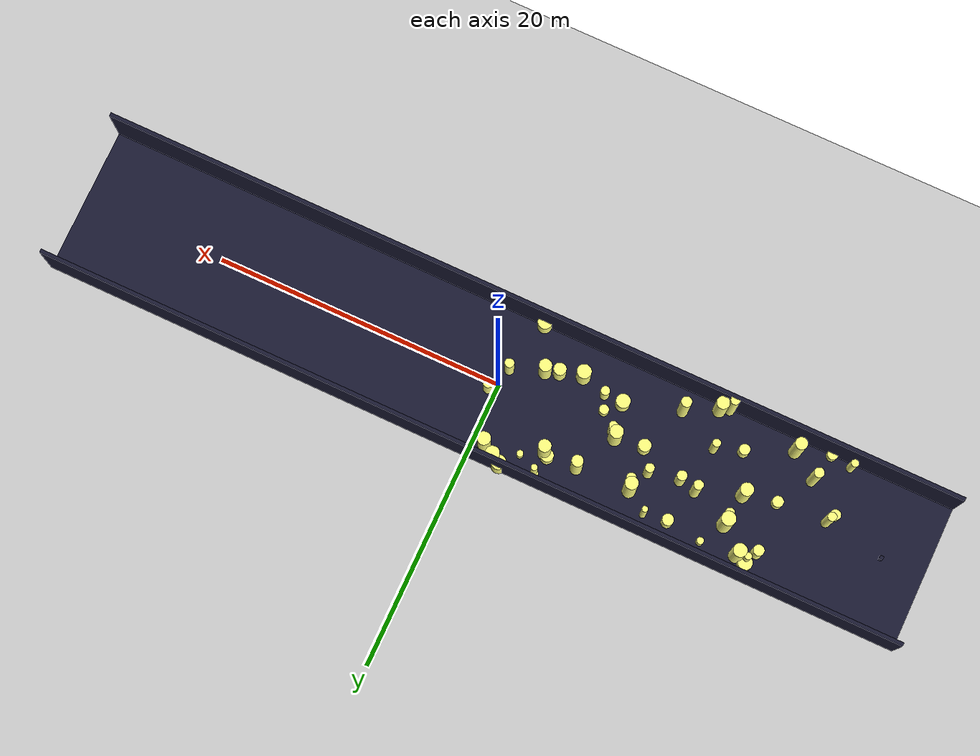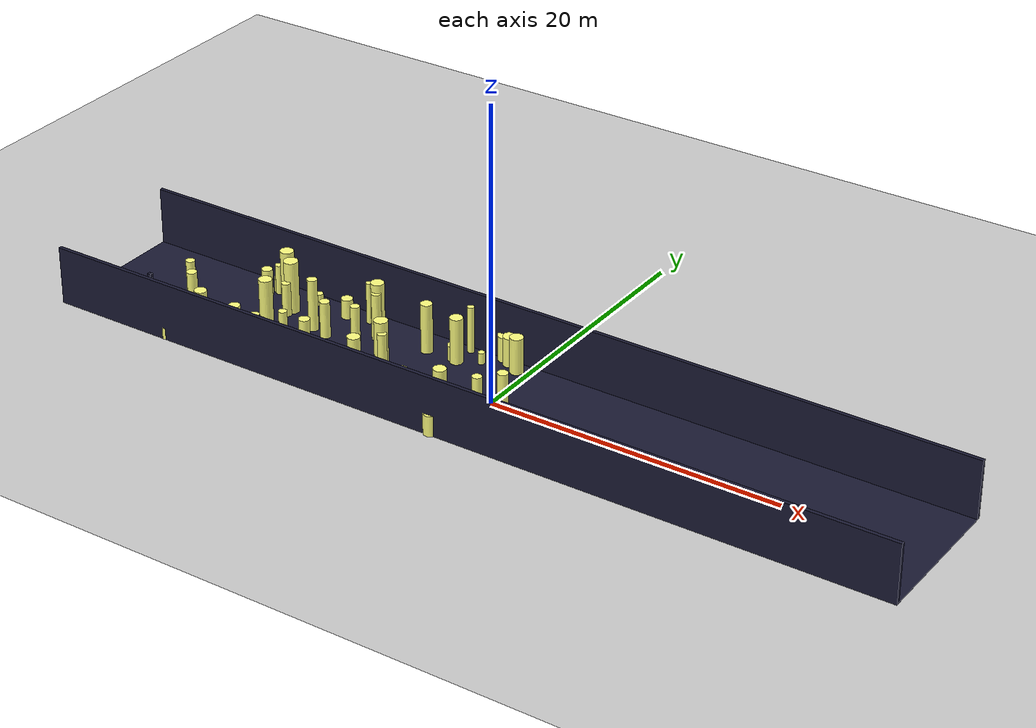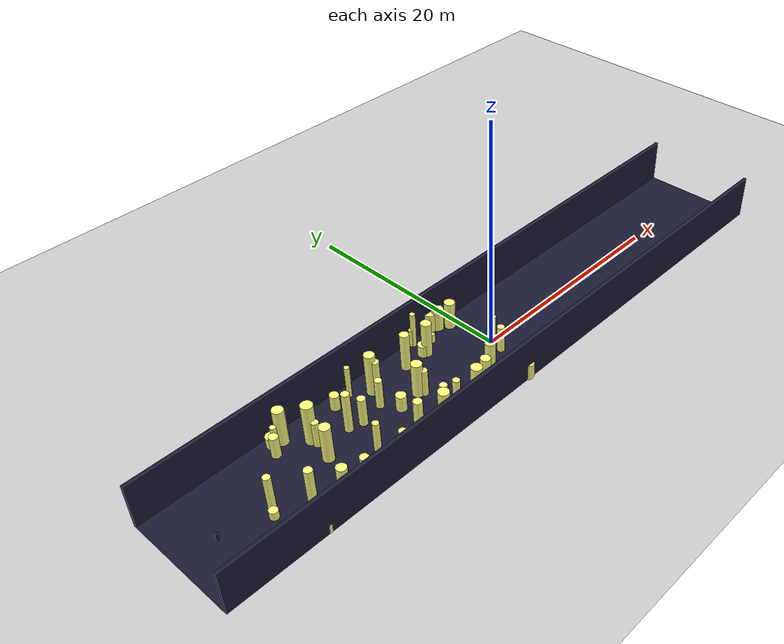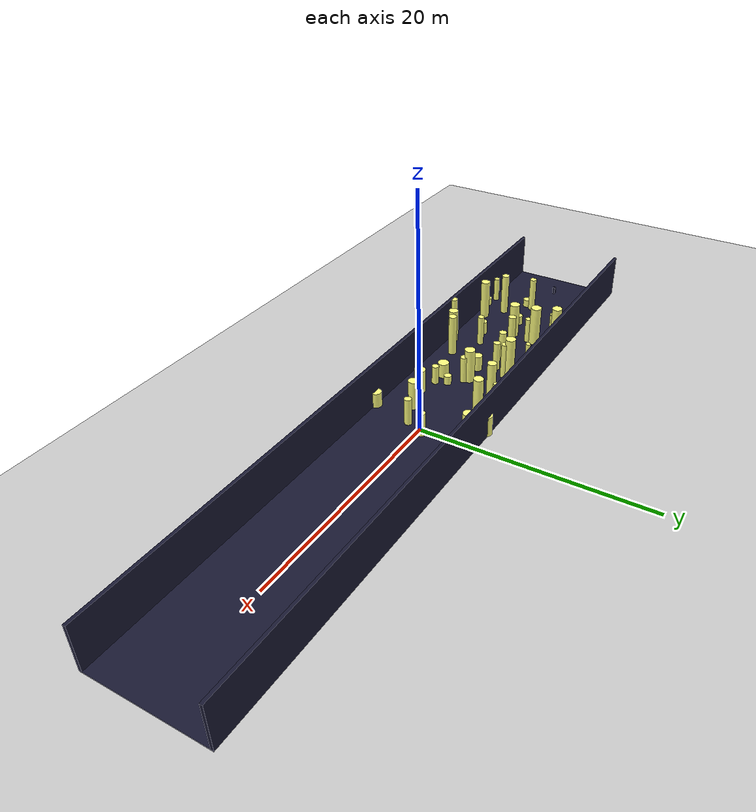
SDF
<sdf version="1.4">
 <world name="default">
  <include><uri>model://ground_plane</uri></include>
  <include><uri>model://sun</uri></include>
  <model name="forest">
   <static>true</static>
   <link name="cylinder0">
    <pose>-3.192849726844482 3.5873826504181725 0.41820738886080283 0 0 0</pose>
    <visual name="visual">
     <geometry>
      <cylinder><radius>0.22529840313196697</radius><length>0.8364147777216057</length></cylinder>
     </geometry>
     <material>
      <ambient>0.6 0.6 0.6 1</ambient>
      <diffuse>1 1 0.5 1</diffuse>
      <specular>0 0 0</specular>
      <emissive>0 0 0 1</emissive>
     </material>
    </visual>
    <collision name="collision">
     <geometry>
      <cylinder><radius>0.22529840313196697</radius><length>0.8364147777216057</length></cylinder>
     </geometry>
     <max_contacts>0</max_contacts>
    </collision>
   </link>
   <link name="cylinder1">
    <pose>-6.531154573892994 -2.2991554551917304 0.8637511969062655 0 0 0</pose>
    <visual name="visual">
     <geometry>
      <cylinder><radius>0.3069299705862069</radius><length>1.727502393812531</length></cylinder>
     </geometry>
     <material>
      <ambient>0.6 0.6 0.6 1</ambient>
      <diffuse>1 1 0.5 1</diffuse>
      <specular>0 0 0</specular>
      <emissive>0 0 0 1</emissive>
     </material>
    </visual>
    <collision name="collision">
     <geometry>
      <cylinder><radius>0.3069299705862069</radius><length>1.727502393812531</length></cylinder>
     </geometry>
     <max_contacts>0</max_contacts>
    </collision>
   </link>
   <link name="cylinder3">
    <pose>-7.840075381841473 -2.2307376366061327 0.6986270750220682 0 0 0</pose>
    <visual name="visual">
     <geometry>
      <cylinder><radius>0.48328531518326306</radius><length>1.3972541500441364</length></cylinder>
     </geometry>
     <material>
      <ambient>0.6 0.6 0.6 1</ambient>
      <diffuse>1 1 0.5 1</diffuse>
      <specular>0 0 0</specular>
      <emissive>0 0 0 1</emissive>
     </material>
    </visual>
    <collision name="collision">
     <geometry>
      <cylinder><radius>0.48328531518326306</radius><length>1.3972541500441364</length></cylinder>
     </geometry>
     <max_contacts>0</max_contacts>
    </collision>
   </link>
   <link name="cylinder7">
    <pose>-10.284992835760514 -0.16313799900772352 0.731888011486953 0 0 0</pose>
    <visual name="visual">
     <geometry>
      <cylinder><radius>0.4293897891182539</radius><length>1.463776022973906</length></cylinder>
     </geometry>
     <material>
      <ambient>0.6 0.6 0.6 1</ambient>
      <diffuse>1 1 0.5 1</diffuse>
      <specular>0 0 0</specular>
      <emissive>0 0 0 1</emissive>
     </material>
    </visual>
    <collision name="collision">
     <geometry>
      <cylinder><radius>0.4293897891182539</radius><length>1.463776022973906</length></cylinder>
     </geometry>
     <max_contacts>0</max_contacts>
    </collision>
   </link>
   <link name="cylinder10">
    <pose>-0.22686120978561064 -1.2207896263014395 1.2268731282159098 0 0 0</pose>
    <visual name="visual">
     <geometry>
      <cylinder><radius>0.3159867367491881</radius><length>2.4537462564318195</length></cylinder>
     </geometry>
     <material>
      <ambient>0.6 0.6 0.6 1</ambient>
      <diffuse>1 1 0.5 1</diffuse>
      <specular>0 0 0</specular>
      <emissive>0 0 0 1</emissive>
     </material>
    </visual>
    <collision name="collision">
     <geometry>
      <cylinder><radius>0.3159867367491881</radius><length>2.4537462564318195</length></cylinder>
     </geometry>
     <max_contacts>0</max_contacts>
    </collision>
   </link>
   <link name="cylinder13">
    <pose>-1.6479260388239219 4.486018486528385 1.0291647151481158 0 0 0</pose>
    <visual name="visual">
     <geometry>
      <cylinder><radius>0.48310275463035407</radius><length>2.0583294302962316</length></cylinder>
     </geometry>
     <material>
      <ambient>0.6 0.6 0.6 1</ambient>
      <diffuse>1 1 0.5 1</diffuse>
      <specular>0 0 0</specular>
      <emissive>0 0 0 1</emissive>
     </material>
    </visual>
    <collision name="collision">
     <geometry>
      <cylinder><radius>0.48310275463035407</radius><length>2.0583294302962316</length></cylinder>
     </geometry>
     <max_contacts>0</max_contacts>
    </collision>
   </link>
   <link name="cylinder14">
    <pose>-13.717309106918485 -4.482344821012548 1.5525525306366679 0 0 0</pose>
    <visual name="visual">
     <geometry>
      <cylinder><radius>0.4386502182769846</radius><length>3.1051050612733357</length></cylinder>
     </geometry>
     <material>
      <ambient>0.6 0.6 0.6 1</ambient>
      <diffuse>1 1 0.5 1</diffuse>
      <specular>0 0 0</specular>
      <emissive>0 0 0 1</emissive>
     </material>
    </visual>
    <collision name="collision">
     <geometry>
      <cylinder><radius>0.4386502182769846</radius><length>3.1051050612733357</length></cylinder>
     </geometry>
     <max_contacts>0</max_contacts>
    </collision>
   </link>
   <link name="cylinder16">
    <pose>-3.2949368990611134 -2.345796280695861 0.913958535475745 0 0 0</pose>
    <visual name="visual">
     <geometry>
      <cylinder><radius>0.42502396809160364</radius><length>1.82791707095149</length></cylinder>
     </geometry>
     <material>
      <ambient>0.6 0.6 0.6 1</ambient>
      <diffuse>1 1 0.5 1</diffuse>
      <specular>0 0 0</specular>
      <emissive>0 0 0 1</emissive>
     </material>
    </visual>
    <collision name="collision">
     <geometry>
      <cylinder><radius>0.42502396809160364</radius><length>1.82791707095149</length></cylinder>
     </geometry>
     <max_contacts>0</max_contacts>
    </collision>
   </link>
   <link name="cylinder19">
    <pose>-21.52139541314041 -4.799360331339456 0.3919770281490217 0 0 0</pose>
    <visual name="visual">
     <geometry>
      <cylinder><radius>0.3513322325659828</radius><length>0.7839540562980434</length></cylinder>
     </geometry>
     <material>
      <ambient>0.6 0.6 0.6 1</ambient>
      <diffuse>1 1 0.5 1</diffuse>
      <specular>0 0 0</specular>
      <emissive>0 0 0 1</emissive>
     </material>
    </visual>
    <collision name="collision">
     <geometry>
      <cylinder><radius>0.3513322325659828</radius><length>0.7839540562980434</length></cylinder>
     </geometry>
     <max_contacts>0</max_contacts>
    </collision>
   </link>
   <link name="cylinder20">
    <pose>-16.022930730948598 3.8910977119118844 0.4477537448495911 0 0 0</pose>
    <visual name="visual">
     <geometry>
      <cylinder><radius>0.24179222421214583</radius><length>0.8955074896991821</length></cylinder>
     </geometry>
     <material>
      <ambient>0.6 0.6 0.6 1</ambient>
      <diffuse>1 1 0.5 1</diffuse>
      <specular>0 0 0</specular>
      <emissive>0 0 0 1</emissive>
     </material>
    </visual>
    <collision name="collision">
     <geometry>
      <cylinder><radius>0.24179222421214583</radius><length>0.8955074896991821</length></cylinder>
     </geometry>
     <max_contacts>0</max_contacts>
    </collision>
   </link>
   <link name="cylinder21">
    <pose>-18.475527163501443 3.7433859103773717 1.661870806551407 0 0 0</pose>
    <visual name="visual">
     <geometry>
      <cylinder><radius>0.45883959178836686</radius><length>3.323741613102814</length></cylinder>
     </geometry>
     <material>
      <ambient>0.6 0.6 0.6 1</ambient>
      <diffuse>1 1 0.5 1</diffuse>
      <specular>0 0 0</specular>
      <emissive>0 0 0 1</emissive>
     </material>
    </visual>
    <collision name="collision">
     <geometry>
      <cylinder><radius>0.45883959178836686</radius><length>3.323741613102814</length></cylinder>
     </geometry>
     <max_contacts>0</max_contacts>
    </collision>
   </link>
   <link name="cylinder22">
    <pose>-4.535254107145597 4.384111423506766 1.6392177718342351 0 0 0</pose>
    <visual name="visual">
     <geometry>
      <cylinder><radius>0.21562769942210844</radius><length>3.2784355436684702</length></cylinder>
     </geometry>
     <material>
      <ambient>0.6 0.6 0.6 1</ambient>
      <diffuse>1 1 0.5 1</diffuse>
      <specular>0 0 0</specular>
      <emissive>0 0 0 1</emissive>
     </material>
    </visual>
    <collision name="collision">
     <geometry>
      <cylinder><radius>0.21562769942210844</radius><length>3.2784355436684702</length></cylinder>
     </geometry>
     <max_contacts>0</max_contacts>
    </collision>
   </link>
   <link name="cylinder24">
    <pose>-17.321003405382605 0.02377790525131296 1.6424565787959828 0 0 0</pose>
    <visual name="visual">
     <geometry>
      <cylinder><radius>0.4467246966665991</radius><length>3.2849131575919657</length></cylinder>
     </geometry>
     <material>
      <ambient>0.6 0.6 0.6 1</ambient>
      <diffuse>1 1 0.5 1</diffuse>
      <specular>0 0 0</specular>
      <emissive>0 0 0 1</emissive>
     </material>
    </visual>
    <collision name="collision">
     <geometry>
      <cylinder><radius>0.4467246966665991</radius><length>3.2849131575919657</length></cylinder>
     </geometry>
     <max_contacts>0</max_contacts>
    </collision>
   </link>
   <link name="cylinder26">
    <pose>-14.343603194212061 -4.7722961267242265 1.9627895293435929 0 0 0</pose>
    <visual name="visual">
     <geometry>
      <cylinder><radius>0.31342925739843686</radius><length>3.9255790586871857</length></cylinder>
     </geometry>
     <material>
      <ambient>0.6 0.6 0.6 1</ambient>
      <diffuse>1 1 0.5 1</diffuse>
      <specular>0 0 0</specular>
      <emissive>0 0 0 1</emissive>
     </material>
    </visual>
    <collision name="collision">
     <geometry>
      <cylinder><radius>0.31342925739843686</radius><length>3.9255790586871857</length></cylinder>
     </geometry>
     <max_contacts>0</max_contacts>
    </collision>
   </link>
   <link name="cylinder27">
    <pose>-11.185640867635904 1.2445072055534805 1.3479667729197307 0 0 0</pose>
    <visual name="visual">
     <geometry>
      <cylinder><radius>0.3088744043318439</radius><length>2.6959335458394613</length></cylinder>
     </geometry>
     <material>
      <ambient>0.6 0.6 0.6 1</ambient>
      <diffuse>1 1 0.5 1</diffuse>
      <specular>0 0 0</specular>
      <emissive>0 0 0 1</emissive>
     </material>
    </visual>
    <collision name="collision">
     <geometry>
      <cylinder><radius>0.3088744043318439</radius><length>2.6959335458394613</length></cylinder>
     </geometry>
     <max_contacts>0</max_contacts>
    </collision>
   </link>
   <link name="cylinder28">
    <pose>-10.375347741907309 2.397718843863278 1.6562582636478846 0 0 0</pose>
    <visual name="visual">
     <geometry>
      <cylinder><radius>0.31791861940273086</radius><length>3.3125165272957693</length></cylinder>
     </geometry>
     <material>
      <ambient>0.6 0.6 0.6 1</ambient>
      <diffuse>1 1 0.5 1</diffuse>
      <specular>0 0 0</specular>
      <emissive>0 0 0 1</emissive>
     </material>
    </visual>
    <collision name="collision">
     <geometry>
      <cylinder><radius>0.31791861940273086</radius><length>3.3125165272957693</length></cylinder>
     </geometry>
     <max_contacts>0</max_contacts>
    </collision>
   </link>
   <link name="cylinder29">
    <pose>-11.978202229633927 3.8230897167422953 1.4724057514765017 0 0 0</pose>
    <visual name="visual">
     <geometry>
      <cylinder><radius>0.20522275142655363</radius><length>2.9448115029530033</length></cylinder>
     </geometry>
     <material>
      <ambient>0.6 0.6 0.6 1</ambient>
      <diffuse>1 1 0.5 1</diffuse>
      <specular>0 0 0</specular>
      <emissive>0 0 0 1</emissive>
     </material>
    </visual>
    <collision name="collision">
     <geometry>
      <cylinder><radius>0.20522275142655363</radius><length>2.9448115029530033</length></cylinder>
     </geometry>
     <max_contacts>0</max_contacts>
    </collision>
   </link>
   <link name="cylinder32">
    <pose>-22.933062753586945 -4.561366808859965 1.1676305453009026 0 0 0</pose>
    <visual name="visual">
     <geometry>
      <cylinder><radius>0.2557523275480341</radius><length>2.335261090601805</length></cylinder>
     </geometry>
     <material>
      <ambient>0.6 0.6 0.6 1</ambient>
      <diffuse>1 1 0.5 1</diffuse>
      <specular>0 0 0</specular>
      <emissive>0 0 0 1</emissive>
     </material>
    </visual>
    <collision name="collision">
     <geometry>
      <cylinder><radius>0.2557523275480341</radius><length>2.335261090601805</length></cylinder>
     </geometry>
     <max_contacts>0</max_contacts>
    </collision>
   </link>
   <link name="cylinder36">
    <pose>-6.927439370681405 -1.300475320676795 0.43946229399103265 0 0 0</pose>
    <visual name="visual">
     <geometry>
      <cylinder><radius>0.3275929531164651</radius><length>0.8789245879820653</length></cylinder>
     </geometry>
     <material>
      <ambient>0.6 0.6 0.6 1</ambient>
      <diffuse>1 1 0.5 1</diffuse>
      <specular>0 0 0</specular>
      <emissive>0 0 0 1</emissive>
     </material>
    </visual>
    <collision name="collision">
     <geometry>
      <cylinder><radius>0.3275929531164651</radius><length>0.8789245879820653</length></cylinder>
     </geometry>
     <max_contacts>0</max_contacts>
    </collision>
   </link>
   <link name="cylinder40">
    <pose>-19.617193351092453 3.0552382854576514 0.9829191595916573 0 0 0</pose>
    <visual name="visual">
     <geometry>
      <cylinder><radius>0.36671551089279053</radius><length>1.9658383191833146</length></cylinder>
     </geometry>
     <material>
      <ambient>0.6 0.6 0.6 1</ambient>
      <diffuse>1 1 0.5 1</diffuse>
      <specular>0 0 0</specular>
      <emissive>0 0 0 1</emissive>
     </material>
    </visual>
    <collision name="collision">
     <geometry>
      <cylinder><radius>0.36671551089279053</radius><length>1.9658383191833146</length></cylinder>
     </geometry>
     <max_contacts>0</max_contacts>
    </collision>
   </link>
   <link name="cylinder43">
    <pose>-0.7968589158950721 3.915933726437169 1.2687810697210444 0 0 0</pose>
    <visual name="visual">
     <geometry>
      <cylinder><radius>0.4544519215467621</radius><length>2.537562139442089</length></cylinder>
     </geometry>
     <material>
      <ambient>0.6 0.6 0.6 1</ambient>
      <diffuse>1 1 0.5 1</diffuse>
      <specular>0 0 0</specular>
      <emissive>0 0 0 1</emissive>
     </material>
    </visual>
    <collision name="collision">
     <geometry>
      <cylinder><radius>0.4544519215467621</radius><length>2.537562139442089</length></cylinder>
     </geometry>
     <max_contacts>0</max_contacts>
    </collision>
   </link>
   <link name="cylinder44">
    <pose>-16.966308467028362 1.6498239983056706 1.1904611856741492 0 0 0</pose>
    <visual name="visual">
     <geometry>
      <cylinder><radius>0.29661769156286455</radius><length>2.3809223713482983</length></cylinder>
     </geometry>
     <material>
      <ambient>0.6 0.6 0.6 1</ambient>
      <diffuse>1 1 0.5 1</diffuse>
      <specular>0 0 0</specular>
      <emissive>0 0 0 1</emissive>
     </material>
    </visual>
    <collision name="collision">
     <geometry>
      <cylinder><radius>0.29661769156286455</radius><length>2.3809223713482983</length></cylinder>
     </geometry>
     <max_contacts>0</max_contacts>
    </collision>
   </link>
   <link name="cylinder45">
    <pose>-23.242238410512115 -1.298396019229414 0.3860815771462779 0 0 0</pose>
    <visual name="visual">
     <geometry>
      <cylinder><radius>0.3566798289988673</radius><length>0.7721631542925558</length></cylinder>
     </geometry>
     <material>
      <ambient>0.6 0.6 0.6 1</ambient>
      <diffuse>1 1 0.5 1</diffuse>
      <specular>0 0 0</specular>
      <emissive>0 0 0 1</emissive>
     </material>
    </visual>
    <collision name="collision">
     <geometry>
      <cylinder><radius>0.3566798289988673</radius><length>0.7721631542925558</length></cylinder>
     </geometry>
     <max_contacts>0</max_contacts>
    </collision>
   </link>
   <link name="cylinder47">
    <pose>-8.315415345329512 0.07293625856197927 1.5698973765842383 0 0 0</pose>
    <visual name="visual">
     <geometry>
      <cylinder><radius>0.4568266699394549</radius><length>3.1397947531684767</length></cylinder>
     </geometry>
     <material>
      <ambient>0.6 0.6 0.6 1</ambient>
      <diffuse>1 1 0.5 1</diffuse>
      <specular>0 0 0</specular>
      <emissive>0 0 0 1</emissive>
     </material>
    </visual>
    <collision name="collision">
     <geometry>
      <cylinder><radius>0.4568266699394549</radius><length>3.1397947531684767</length></cylinder>
     </geometry>
     <max_contacts>0</max_contacts>
    </collision>
   </link>
   <link name="cylinder48">
    <pose>-19.14534681637143 3.6872108470854528 1.05835725443846 0 0 0</pose>
    <visual name="visual">
     <geometry>
      <cylinder><radius>0.23886587185151642</radius><length>2.11671450887692</length></cylinder>
     </geometry>
     <material>
      <ambient>0.6 0.6 0.6 1</ambient>
      <diffuse>1 1 0.5 1</diffuse>
      <specular>0 0 0</specular>
      <emissive>0 0 0 1</emissive>
     </material>
    </visual>
    <collision name="collision">
     <geometry>
      <cylinder><radius>0.23886587185151642</radius><length>2.11671450887692</length></cylinder>
     </geometry>
     <max_contacts>0</max_contacts>
    </collision>
   </link>
   <link name="cylinder51">
    <pose>-13.24604810025954 0.818495764659243 1.293570343791727 0 0 0</pose>
    <visual name="visual">
     <geometry>
      <cylinder><radius>0.34008352765678296</radius><length>2.587140687583454</length></cylinder>
     </geometry>
     <material>
      <ambient>0.6 0.6 0.6 1</ambient>
      <diffuse>1 1 0.5 1</diffuse>
      <specular>0 0 0</specular>
      <emissive>0 0 0 1</emissive>
     </material>
    </visual>
    <collision name="collision">
     <geometry>
      <cylinder><radius>0.34008352765678296</radius><length>2.587140687583454</length></cylinder>
     </geometry>
     <max_contacts>0</max_contacts>
    </collision>
   </link>
   <link name="cylinder54">
    <pose>-4.645652061191736 4.4955602661596075 0.8244760821237908 0 0 0</pose>
    <visual name="visual">
     <geometry>
      <cylinder><radius>0.21961359601710717</radius><length>1.6489521642475815</length></cylinder>
     </geometry>
     <material>
      <ambient>0.6 0.6 0.6 1</ambient>
      <diffuse>1 1 0.5 1</diffuse>
      <specular>0 0 0</specular>
      <emissive>0 0 0 1</emissive>
     </material>
    </visual>
    <collision name="collision">
     <geometry>
      <cylinder><radius>0.21961359601710717</radius><length>1.6489521642475815</length></cylinder>
     </geometry>
     <max_contacts>0</max_contacts>
    </collision>
   </link>
   <link name="cylinder56">
    <pose>-2.4037501720572934 -2.020563672012404 1.3325415203637436 0 0 0</pose>
    <visual name="visual">
     <geometry>
      <cylinder><radius>0.4285643957914931</radius><length>2.6650830407274873</length></cylinder>
     </geometry>
     <material>
      <ambient>0.6 0.6 0.6 1</ambient>
      <diffuse>1 1 0.5 1</diffuse>
      <specular>0 0 0</specular>
      <emissive>0 0 0 1</emissive>
     </material>
    </visual>
    <collision name="collision">
     <geometry>
      <cylinder><radius>0.4285643957914931</radius><length>2.6650830407274873</length></cylinder>
     </geometry>
     <max_contacts>0</max_contacts>
    </collision>
   </link>
   <link name="cylinder58">
    <pose>-16.223436627568937 -2.6358226408781738 0.639615828912053 0 0 0</pose>
    <visual name="visual">
     <geometry>
      <cylinder><radius>0.3692438282645588</radius><length>1.279231657824106</length></cylinder>
     </geometry>
     <material>
      <ambient>0.6 0.6 0.6 1</ambient>
      <diffuse>1 1 0.5 1</diffuse>
      <specular>0 0 0</specular>
      <emissive>0 0 0 1</emissive>
     </material>
    </visual>
    <collision name="collision">
     <geometry>
      <cylinder><radius>0.3692438282645588</radius><length>1.279231657824106</length></cylinder>
     </geometry>
     <max_contacts>0</max_contacts>
    </collision>
   </link>
   <link name="cylinder59">
    <pose>-4.833804361718109 3.011883279083353 0.558730807152031 0 0 0</pose>
    <visual name="visual">
     <geometry>
      <cylinder><radius>0.44148800575297126</radius><length>1.117461614304062</length></cylinder>
     </geometry>
     <material>
      <ambient>0.6 0.6 0.6 1</ambient>
      <diffuse>1 1 0.5 1</diffuse>
      <specular>0 0 0</specular>
      <emissive>0 0 0 1</emissive>
     </material>
    </visual>
    <collision name="collision">
     <geometry>
      <cylinder><radius>0.44148800575297126</radius><length>1.117461614304062</length></cylinder>
     </geometry>
     <max_contacts>0</max_contacts>
    </collision>
   </link>
   <link name="cylinder61">
    <pose>-10.542345697944755 2.796629027205281 1.932119978304161 0 0 0</pose>
    <visual name="visual">
     <geometry>
      <cylinder><radius>0.4419601165467153</radius><length>3.864239956608322</length></cylinder>
     </geometry>
     <material>
      <ambient>0.6 0.6 0.6 1</ambient>
      <diffuse>1 1 0.5 1</diffuse>
      <specular>0 0 0</specular>
      <emissive>0 0 0 1</emissive>
     </material>
    </visual>
    <collision name="collision">
     <geometry>
      <cylinder><radius>0.4419601165467153</radius><length>3.864239956608322</length></cylinder>
     </geometry>
     <max_contacts>0</max_contacts>
    </collision>
   </link>
   <link name="cylinder65">
    <pose>-17.003328164011222 2.271189466586483 1.844629039812176 0 0 0</pose>
    <visual name="visual">
     <geometry>
      <cylinder><radius>0.4836389146505552</radius><length>3.689258079624352</length></cylinder>
     </geometry>
     <material>
      <ambient>0.6 0.6 0.6 1</ambient>
      <diffuse>1 1 0.5 1</diffuse>
      <specular>0 0 0</specular>
      <emissive>0 0 0 1</emissive>
     </material>
    </visual>
    <collision name="collision">
     <geometry>
      <cylinder><radius>0.4836389146505552</radius><length>3.689258079624352</length></cylinder>
     </geometry>
     <max_contacts>0</max_contacts>
    </collision>
   </link>
   <link name="cylinder66">
    <pose>-14.418765345843687 1.1102216565047325 1.838638379085933 0 0 0</pose>
    <visual name="visual">
     <geometry>
      <cylinder><radius>0.32853140967150973</radius><length>3.677276758171866</length></cylinder>
     </geometry>
     <material>
      <ambient>0.6 0.6 0.6 1</ambient>
      <diffuse>1 1 0.5 1</diffuse>
      <specular>0 0 0</specular>
      <emissive>0 0 0 1</emissive>
     </material>
    </visual>
    <collision name="collision">
     <geometry>
      <cylinder><radius>0.32853140967150973</radius><length>3.677276758171866</length></cylinder>
     </geometry>
     <max_contacts>0</max_contacts>
    </collision>
   </link>
   <link name="cylinder68">
    <pose>0.5154638344089584 0.44510947290544145 1.061932650878334 0 0 0</pose>
    <visual name="visual">
     <geometry>
      <cylinder><radius>0.3559748003883073</radius><length>2.123865301756668</length></cylinder>
     </geometry>
     <material>
      <ambient>0.6 0.6 0.6 1</ambient>
      <diffuse>1 1 0.5 1</diffuse>
      <specular>0 0 0</specular>
      <emissive>0 0 0 1</emissive>
     </material>
    </visual>
    <collision name="collision">
     <geometry>
      <cylinder><radius>0.3559748003883073</radius><length>2.123865301756668</length></cylinder>
     </geometry>
     <max_contacts>0</max_contacts>
    </collision>
   </link>
   <link name="cylinder69">
    <pose>-2.2240508841962594 4.81060729003705 0.8901127470546064 0 0 0</pose>
    <visual name="visual">
     <geometry>
      <cylinder><radius>0.4976981120629211</radius><length>1.7802254941092128</length></cylinder>
     </geometry>
     <material>
      <ambient>0.6 0.6 0.6 1</ambient>
      <diffuse>1 1 0.5 1</diffuse>
      <specular>0 0 0</specular>
      <emissive>0 0 0 1</emissive>
     </material>
    </visual>
    <collision name="collision">
     <geometry>
      <cylinder><radius>0.4976981120629211</radius><length>1.7802254941092128</length></cylinder>
     </geometry>
     <max_contacts>0</max_contacts>
    </collision>
   </link>
   <link name="cylinder72">
    <pose>-20.99148614963648 -2.737000166826941 1.9746754435319942 0 0 0</pose>
    <visual name="visual">
     <geometry>
      <cylinder><radius>0.33717344354309686</radius><length>3.9493508870639884</length></cylinder>
     </geometry>
     <material>
      <ambient>0.6 0.6 0.6 1</ambient>
      <diffuse>1 1 0.5 1</diffuse>
      <specular>0 0 0</specular>
      <emissive>0 0 0 1</emissive>
     </material>
    </visual>
    <collision name="collision">
     <geometry>
      <cylinder><radius>0.33717344354309686</radius><length>3.9493508870639884</length></cylinder>
     </geometry>
     <max_contacts>0</max_contacts>
    </collision>
   </link>
   <link name="cylinder77">
    <pose>-1.1049635330194754 -4.8467365492194245 0.703327023593642 0 0 0</pose>
    <visual name="visual">
     <geometry>
      <cylinder><radius>0.4796294691629865</radius><length>1.406654047187284</length></cylinder>
     </geometry>
     <material>
      <ambient>0.6 0.6 0.6 1</ambient>
      <diffuse>1 1 0.5 1</diffuse>
      <specular>0 0 0</specular>
      <emissive>0 0 0 1</emissive>
     </material>
    </visual>
    <collision name="collision">
     <geometry>
      <cylinder><radius>0.4796294691629865</radius><length>1.406654047187284</length></cylinder>
     </geometry>
     <max_contacts>0</max_contacts>
    </collision>
   </link>
   <link name="cylinder79">
    <pose>-19.252298657584006 -4.021728908811514 1.8659413770956719 0 0 0</pose>
    <visual name="visual">
     <geometry>
      <cylinder><radius>0.4108904089525217</radius><length>3.7318827541913437</length></cylinder>
     </geometry>
     <material>
      <ambient>0.6 0.6 0.6 1</ambient>
      <diffuse>1 1 0.5 1</diffuse>
      <specular>0 0 0</specular>
      <emissive>0 0 0 1</emissive>
     </material>
    </visual>
    <collision name="collision">
     <geometry>
      <cylinder><radius>0.4108904089525217</radius><length>3.7318827541913437</length></cylinder>
     </geometry>
     <max_contacts>0</max_contacts>
    </collision>
   </link>
   <link name="cylinder81">
    <pose>-4.558761929803644 2.839792865496971 1.6143426840219686 0 0 0</pose>
    <visual name="visual">
     <geometry>
      <cylinder><radius>0.42973988279436365</radius><length>3.228685368043937</length></cylinder>
     </geometry>
     <material>
      <ambient>0.6 0.6 0.6 1</ambient>
      <diffuse>1 1 0.5 1</diffuse>
      <specular>0 0 0</specular>
      <emissive>0 0 0 1</emissive>
     </material>
    </visual>
    <collision name="collision">
     <geometry>
      <cylinder><radius>0.42973988279436365</radius><length>3.228685368043937</length></cylinder>
     </geometry>
     <max_contacts>0</max_contacts>
    </collision>
   </link>
   <link name="cylinder82">
    <pose>-19.53323609762434 -0.4921536830967046 0.4766419389379897 0 0 0</pose>
    <visual name="visual">
     <geometry>
      <cylinder><radius>0.37900866974835207</radius><length>0.9532838778759793</length></cylinder>
     </geometry>
     <material>
      <ambient>0.6 0.6 0.6 1</ambient>
      <diffuse>1 1 0.5 1</diffuse>
      <specular>0 0 0</specular>
      <emissive>0 0 0 1</emissive>
     </material>
    </visual>
    <collision name="collision">
     <geometry>
      <cylinder><radius>0.37900866974835207</radius><length>0.9532838778759793</length></cylinder>
     </geometry>
     <max_contacts>0</max_contacts>
    </collision>
   </link>
   <link name="cylinder83">
    <pose>-22.889818123189187 -0.6417549049705285 1.6249316119383026 0 0 0</pose>
    <visual name="visual">
     <geometry>
      <cylinder><radius>0.29947745109313373</radius><length>3.249863223876605</length></cylinder>
     </geometry>
     <material>
      <ambient>0.6 0.6 0.6 1</ambient>
      <diffuse>1 1 0.5 1</diffuse>
      <specular>0 0 0</specular>
      <emissive>0 0 0 1</emissive>
     </material>
    </visual>
    <collision name="collision">
     <geometry>
      <cylinder><radius>0.29947745109313373</radius><length>3.249863223876605</length></cylinder>
     </geometry>
     <max_contacts>0</max_contacts>
    </collision>
   </link>
   <link name="cylinder85">
    <pose>-13.593891374301748 3.5976002090997348 0.7066741708964427 0 0 0</pose>
    <visual name="visual">
     <geometry>
      <cylinder><radius>0.3919931333062263</radius><length>1.4133483417928854</length></cylinder>
     </geometry>
     <material>
      <ambient>0.6 0.6 0.6 1</ambient>
      <diffuse>1 1 0.5 1</diffuse>
      <specular>0 0 0</specular>
      <emissive>0 0 0 1</emissive>
     </material>
    </visual>
    <collision name="collision">
     <geometry>
      <cylinder><radius>0.3919931333062263</radius><length>1.4133483417928854</length></cylinder>
     </geometry>
     <max_contacts>0</max_contacts>
    </collision>
   </link>
   <link name="cylinder87">
    <pose>-11.570153541948509 -3.3969751364233893 1.9159691755308432 0 0 0</pose>
    <visual name="visual">
     <geometry>
      <cylinder><radius>0.3566376583974375</radius><length>3.8319383510616865</length></cylinder>
     </geometry>
     <material>
      <ambient>0.6 0.6 0.6 1</ambient>
      <diffuse>1 1 0.5 1</diffuse>
      <specular>0 0 0</specular>
      <emissive>0 0 0 1</emissive>
     </material>
    </visual>
    <collision name="collision">
     <geometry>
      <cylinder><radius>0.3566376583974375</radius><length>3.8319383510616865</length></cylinder>
     </geometry>
     <max_contacts>0</max_contacts>
    </collision>
   </link>
   <link name="cylinder88">
    <pose>-14.3897506955721 -1.9748987240201443 1.415155352228374 0 0 0</pose>
    <visual name="visual">
     <geometry>
      <cylinder><radius>0.27760719128766903</radius><length>2.830310704456748</length></cylinder>
     </geometry>
     <material>
      <ambient>0.6 0.6 0.6 1</ambient>
      <diffuse>1 1 0.5 1</diffuse>
      <specular>0 0 0</specular>
      <emissive>0 0 0 1</emissive>
     </material>
    </visual>
    <collision name="collision">
     <geometry>
      <cylinder><radius>0.27760719128766903</radius><length>2.830310704456748</length></cylinder>
     </geometry>
     <max_contacts>0</max_contacts>
    </collision>
   </link>
   <link name="cylinder89">
    <pose>-19.195145113273334 4.0056519749249375 0.5170321644583123 0 0 0</pose>
    <visual name="visual">
     <geometry>
      <cylinder><radius>0.4862626108858763</radius><length>1.0340643289166247</length></cylinder>
     </geometry>
     <material>
      <ambient>0.6 0.6 0.6 1</ambient>
      <diffuse>1 1 0.5 1</diffuse>
      <specular>0 0 0</specular>
      <emissive>0 0 0 1</emissive>
     </material>
    </visual>
    <collision name="collision">
     <geometry>
      <cylinder><radius>0.4862626108858763</radius><length>1.0340643289166247</length></cylinder>
     </geometry>
     <max_contacts>0</max_contacts>
    </collision>
   </link>
   <link name="cylinder94">
    <pose>-4.795592493569011 -2.7927022897521745 1.0901907596357667 0 0 0</pose>
    <visual name="visual">
     <geometry>
      <cylinder><radius>0.48309340574132764</radius><length>2.1803815192715335</length></cylinder>
     </geometry>
     <material>
      <ambient>0.6 0.6 0.6 1</ambient>
      <diffuse>1 1 0.5 1</diffuse>
      <specular>0 0 0</specular>
      <emissive>0 0 0 1</emissive>
     </material>
    </visual>
    <collision name="collision">
     <geometry>
      <cylinder><radius>0.48309340574132764</radius><length>2.1803815192715335</length></cylinder>
     </geometry>
     <max_contacts>0</max_contacts>
    </collision>
   </link>
   <link name="cylinder96">
    <pose>-7.969536579543618 -0.30124951980478265 1.2397876414670868 0 0 0</pose>
    <visual name="visual">
     <geometry>
      <cylinder><radius>0.30768489636914487</radius><length>2.4795752829341735</length></cylinder>
     </geometry>
     <material>
      <ambient>0.6 0.6 0.6 1</ambient>
      <diffuse>1 1 0.5 1</diffuse>
      <specular>0 0 0</specular>
      <emissive>0 0 0 1</emissive>
     </material>
    </visual>
    <collision name="collision">
     <geometry>
      <cylinder><radius>0.30768489636914487</radius><length>2.4795752829341735</length></cylinder>
     </geometry>
     <max_contacts>0</max_contacts>
    </collision>
   </link>
   <link name="cylinder98">
    <pose>-6.853362814734442 2.889443442115555 1.7401810881875504 0 0 0</pose>
    <visual name="visual">
     <geometry>
      <cylinder><radius>0.3902621899697453</radius><length>3.4803621763751007</length></cylinder>
     </geometry>
     <material>
      <ambient>0.6 0.6 0.6 1</ambient>
      <diffuse>1 1 0.5 1</diffuse>
      <specular>0 0 0</specular>
      <emissive>0 0 0 1</emissive>
     </material>
    </visual>
    <collision name="collision">
     <geometry>
      <cylinder><radius>0.3902621899697453</radius><length>3.4803621763751007</length></cylinder>
     </geometry>
     <max_contacts>0</max_contacts>
    </collision>
   </link>
   <link name="cube0">
    <pose>0 5.0 2.0 0 0 0</pose>
    <visual name="visual">
     <geometry><box><size>60.0 0.25 4.0</size></box></geometry>
     <material>
      <ambient>0.1 0.1 0.1 1</ambient>
      <diffuse>0.1 0.1 0.2 1</diffuse>
      <specular>0 0 0</specular>
      <emissive>0 0 0 1</emissive>
     </material>
    </visual>
    <collision name="collision">
     <geometry><box><size>60.0 0.25 4.0</size></box></geometry>
     <max_contacts>0</max_contacts>
    </collision>
   </link>
   <link name="cube1">
    <pose>0 -5.0 2.0 0 0 0</pose>
    <visual name="visual">
     <geometry><box><size>60.0 0.25 4.0</size></box></geometry>
     <material>
      <ambient>0.1 0.1 0.1 1</ambient>
      <diffuse>0.1 0.1 0.2 1</diffuse>
      <specular>0 0 0</specular>
      <emissive>0 0 0 1</emissive>
     </material>
    </visual>
    <collision name="collision">
     <geometry><box><size>60.0 0.25 4.0</size></box></geometry>
     <max_contacts>0</max_contacts>
    </collision>
   </link>
   <link name="cube2">
    <pose>0 0 0.03125 0 0 0</pose>
    <visual name="visual">
     <geometry><box><size>60.0 10 0.0625</size></box></geometry>
     <material>
      <ambient>0.1 0.1 0.1 1</ambient>
      <diffuse>0.1 0.1 0.2 1</diffuse>
      <specular>0 0 0</specular>
      <emissive>0 0 0 1</emissive>
     </material>
    </visual>
    <collision name="collision">
     <geometry><box><size>60.0 10 0.0625</size></box></geometry>
     <max_contacts>0</max_contacts>
    </collision>
   </link>
   <link name="cube3">
    <pose>-27.0 0.0 0.25 0 0 0</pose>
    <visual name="visual">
     <geometry><box><size>0.25 0.25 1.0</size></box></geometry>
     <material>
      <ambient>0.1 0.1 0.1 1</ambient>
      <diffuse>0.1 0.1 0.2 1</diffuse>
      <specular>0 0 0</specular>
      <emissive>0 0 0 1</emissive>
     </material>
    </visual>
    <collision name="collision">
     <geometry><box><size>0.25 0.25 1.0</size></box></geometry>
     <max_contacts>0</max_contacts>
    </collision>
   </link>
  </model>
 </world>
</sdf>
